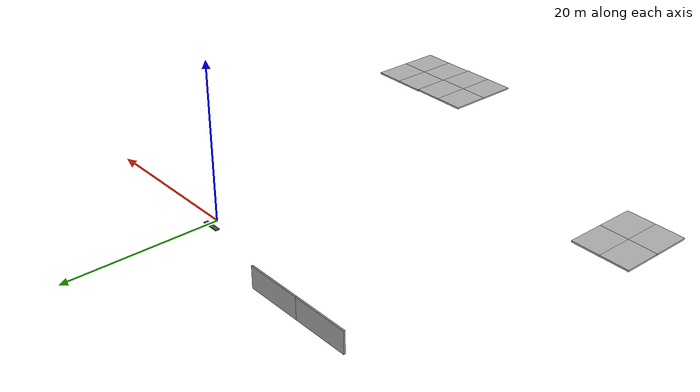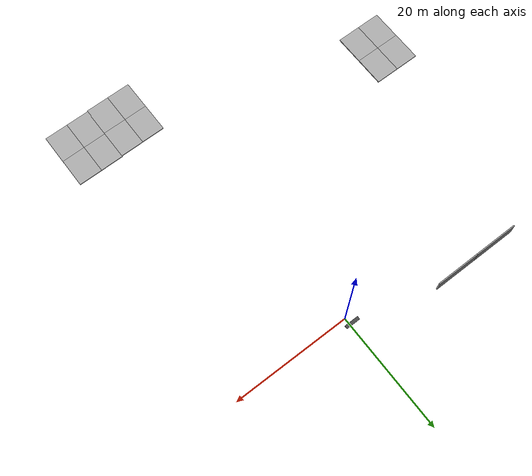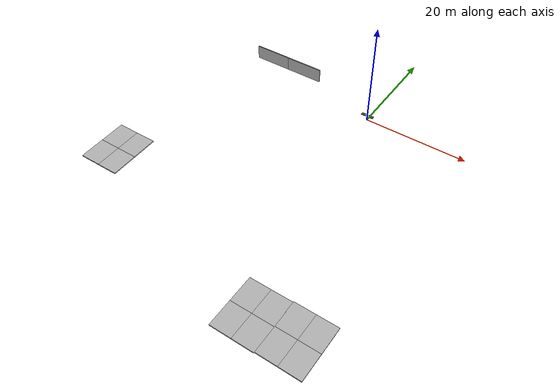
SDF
<sdf version="1.6">
 <world name="default">
  <light name="sun" type="directional">
   <pose>0 0 10 0 -0 0</pose>
   <diffuse>0.8 0.8 0.8 1</diffuse>
   <specular>0.1 0.1 0.1 1</specular>
   <attenuation>
    <range>1000</range>
    <constant>0.9</constant>
    <linear>0.01</linear>
    <quadratic>0.001</quadratic>
   </attenuation>
   <direction>-0.5 0.5 -1</direction>
  </light>
  <gravity>0 0 -9.8</gravity>
  <magnetic_field>6e-06 2.3e-05 -4.2e-05</magnetic_field>
  <atmosphere type="adiabatic"/>
  <physics name="default_physics" default="0" type="ode">
   <max_step_size>0.001</max_step_size>
   <real_time_factor>1</real_time_factor>
   <real_time_update_rate>1000</real_time_update_rate>
  </physics>
  <scene><ambient>0.4 0.4 0.4 1</ambient><background>0.7 0.7 0.7 1</background><shadows>1</shadows></scene>
  <spherical_coordinates>
   <surface_model>EARTH_WGS84</surface_model>
   <latitude_deg>0</latitude_deg>
   <longitude_deg>0</longitude_deg>
   <elevation>0</elevation>
   <heading_deg>0</heading_deg>
  </spherical_coordinates>
  <model name="asphalt_plane_0">
   <static>1</static>
   <link name="link">
    <collision name="collision"><geometry><box><size>2.42497 0.551687 0.1</size></box></geometry></collision>
    <visual name="visual">
     <cast_shadows>0</cast_shadows>
     <geometry><box><size>2.42497 0.551687 0.1</size></box></geometry>
     <material>
      <script>
       <uri>model://asphalt_plane/materials/scripts</uri>
       <uri>model://asphalt_plane/materials/textures</uri>
       <name>vrc/asphalt</name>
      </script>
     </material>
    </visual>
   </link>
   <pose>-0.502213 1.09506 0 0 -0 0</pose>
  </model>
  <model name="mud_box">
   <static>1</static>
   <link name="link">
    <collision name="collision"><geometry><box><size>8 10 0.2</size></box></geometry></collision>
    <visual name="visual_1">
     <pose>-2 2.5 0 0 -0 0</pose>
     <cast_shadows>0</cast_shadows>
     <geometry><box><size>4 5 0.2</size></box></geometry>
     <material>
      <script>
       <uri>model://mud_box/materials/scripts</uri>
       <uri>model://mud_box/materials/textures</uri>
       <name>vrc/mud</name>
      </script>
     </material>
    </visual>
    <visual name="visual_2">
     <pose>2 2.5 0 0 -0 0</pose>
     <cast_shadows>0</cast_shadows>
     <geometry><box><size>4 5 0.2</size></box></geometry>
     <material>
      <script>
       <uri>model://mud_box/materials/scripts</uri>
       <uri>model://mud_box/materials/textures</uri>
       <name>vrc/mud</name>
      </script>
     </material>
    </visual>
    <visual name="visual_3">
     <pose>2 -2.5 0 0 -0 0</pose>
     <cast_shadows>0</cast_shadows>
     <geometry><box><size>4 5 0.2</size></box></geometry>
     <material>
      <script>
       <uri>model://mud_box/materials/scripts</uri>
       <uri>model://mud_box/materials/textures</uri>
       <name>vrc/mud</name>
      </script>
     </material>
    </visual>
    <visual name="visual_4">
     <pose>-2 -2.5 0 0 -0 0</pose>
     <cast_shadows>0</cast_shadows>
     <geometry><box><size>4 5 0.2</size></box></geometry>
     <material>
      <script>
       <uri>model://mud_box/materials/scripts</uri>
       <uri>model://mud_box/materials/textures</uri>
       <name>vrc/mud</name>
      </script>
     </material>
    </visual>
   </link>
   <pose>-33.4952 -32.4322 0 0 -0 0</pose>
  </model>
  <model name="mud_box_1">
   <static>1</static>
   <link name="link">
    <collision name="collision"><geometry><box><size>8 10 0.2</size></box></geometry></collision>
    <visual name="visual_1">
     <pose>-2 2.5 0 0 -0 0</pose>
     <cast_shadows>0</cast_shadows>
     <geometry><box><size>4 5 0.2</size></box></geometry>
     <material>
      <script>
       <uri>model://mud_box/materials/scripts</uri>
       <uri>model://mud_box/materials/textures</uri>
       <name>vrc/mud</name>
      </script>
     </material>
    </visual>
    <visual name="visual_2">
     <pose>2 2.5 0 0 -0 0</pose>
     <cast_shadows>0</cast_shadows>
     <geometry><box><size>4 5 0.2</size></box></geometry>
     <material>
      <script>
       <uri>model://mud_box/materials/scripts</uri>
       <uri>model://mud_box/materials/textures</uri>
       <name>vrc/mud</name>
      </script>
     </material>
    </visual>
    <visual name="visual_3">
     <pose>2 -2.5 0 0 -0 0</pose>
     <cast_shadows>0</cast_shadows>
     <geometry><box><size>4 5 0.2</size></box></geometry>
     <material>
      <script>
       <uri>model://mud_box/materials/scripts</uri>
       <uri>model://mud_box/materials/textures</uri>
       <name>vrc/mud</name>
      </script>
     </material>
    </visual>
    <visual name="visual_4">
     <pose>-2 -2.5 0 0 -0 0</pose>
     <cast_shadows>0</cast_shadows>
     <geometry><box><size>4 5 0.2</size></box></geometry>
     <material>
      <script>
       <uri>model://mud_box/materials/scripts</uri>
       <uri>model://mud_box/materials/textures</uri>
       <name>vrc/mud</name>
      </script>
     </material>
    </visual>
   </link>
   <pose>7.16369 -47.0261 0 0 -0 0</pose>
  </model>
  <model name="mud_box_2">
   <static>1</static>
   <link name="link">
    <collision name="collision"><geometry><box><size>8 10 0.2</size></box></geometry></collision>
    <visual name="visual_1">
     <pose>-2 2.5 0 0 -0 0</pose>
     <cast_shadows>0</cast_shadows>
     <geometry><box><size>4 5 0.2</size></box></geometry>
     <material>
      <script>
       <uri>model://mud_box/materials/scripts</uri>
       <uri>model://mud_box/materials/textures</uri>
       <name>vrc/mud</name>
      </script>
     </material>
    </visual>
    <visual name="visual_2">
     <pose>2 2.5 0 0 -0 0</pose>
     <cast_shadows>0</cast_shadows>
     <geometry><box><size>4 5 0.2</size></box></geometry>
     <material>
      <script>
       <uri>model://mud_box/materials/scripts</uri>
       <uri>model://mud_box/materials/textures</uri>
       <name>vrc/mud</name>
      </script>
     </material>
    </visual>
    <visual name="visual_3">
     <pose>2 -2.5 0 0 -0 0</pose>
     <cast_shadows>0</cast_shadows>
     <geometry><box><size>4 5 0.2</size></box></geometry>
     <material>
      <script>
       <uri>model://mud_box/materials/scripts</uri>
       <uri>model://mud_box/materials/textures</uri>
       <name>vrc/mud</name>
      </script>
     </material>
    </visual>
    <visual name="visual_4">
     <pose>-2 -2.5 0 0 -0 0</pose>
     <cast_shadows>0</cast_shadows>
     <geometry><box><size>4 5 0.2</size></box></geometry>
     <material>
      <script>
       <uri>model://mud_box/materials/scripts</uri>
       <uri>model://mud_box/materials/textures</uri>
       <name>vrc/mud</name>
      </script>
     </material>
    </visual>
   </link>
   <pose>15.0823 -46.8998 0 0 -0 0</pose>
  </model>
  <model name="grey_wall">
   <static>1</static>
   <link name="link">
    <pose>0 0 1.4 0 -0 0</pose>
    <collision name="collision"><geometry><box><size>7.5 0.2 2.8</size></box></geometry></collision>
    <visual name="visual">
     <cast_shadows>0</cast_shadows>
     <geometry><box><size>7.5 0.2 2.8</size></box></geometry>
     <material>
      <script>
       <uri>model://grey_wall/materials/scripts</uri>
       <uri>model://grey_wall/materials/textures</uri>
       <name>vrc/grey_wall</name>
      </script>
     </material>
    </visual>
   </link>
   <pose>-24.9135 4.81679 0 0 -0 0</pose>
  </model>
  <model name="grey_wall_0">
   <static>1</static>
   <link name="link">
    <pose>0 0 1.4 0 -0 0</pose>
    <collision name="collision"><geometry><box><size>7.5 0.2 2.8</size></box></geometry></collision>
    <visual name="visual">
     <cast_shadows>0</cast_shadows>
     <geometry><box><size>7.5 0.2 2.8</size></box></geometry>
     <material>
      <script>
       <uri>model://grey_wall/materials/scripts</uri>
       <uri>model://grey_wall/materials/textures</uri>
       <name>vrc/grey_wall</name>
      </script>
     </material>
    </visual>
   </link>
   <pose>-17.4635 4.81663 0 0 -0 0</pose>
  </model>
 </world>
</sdf>
